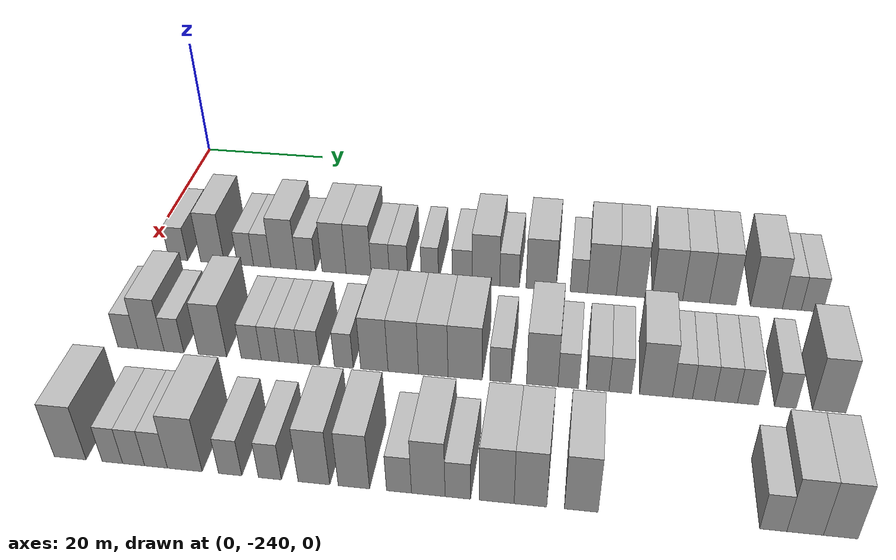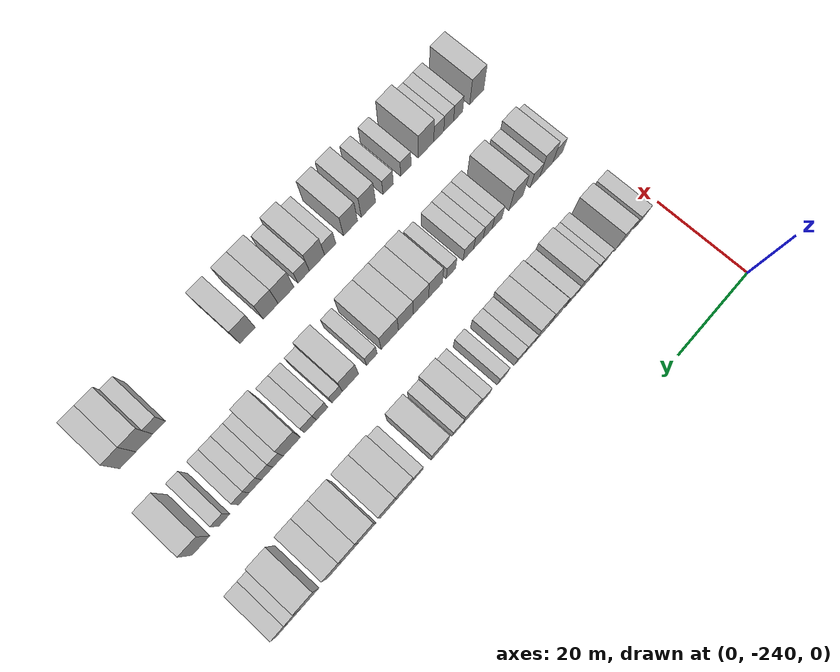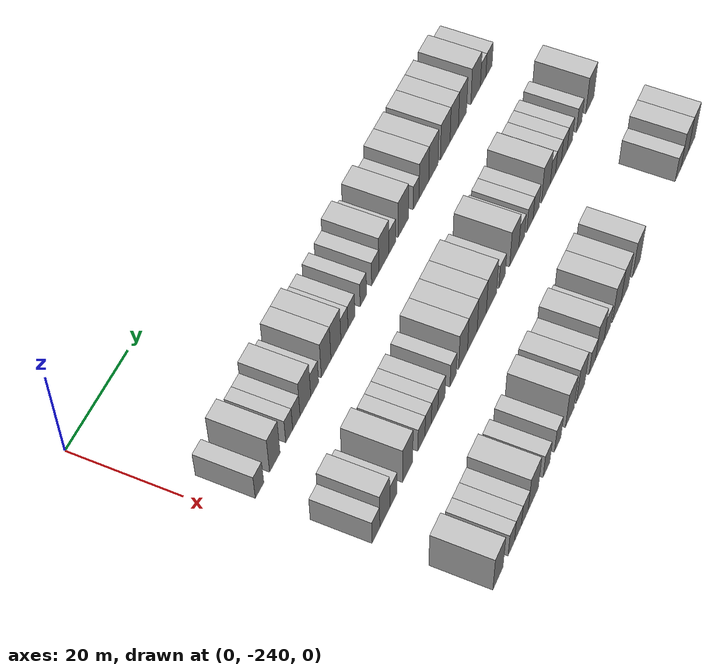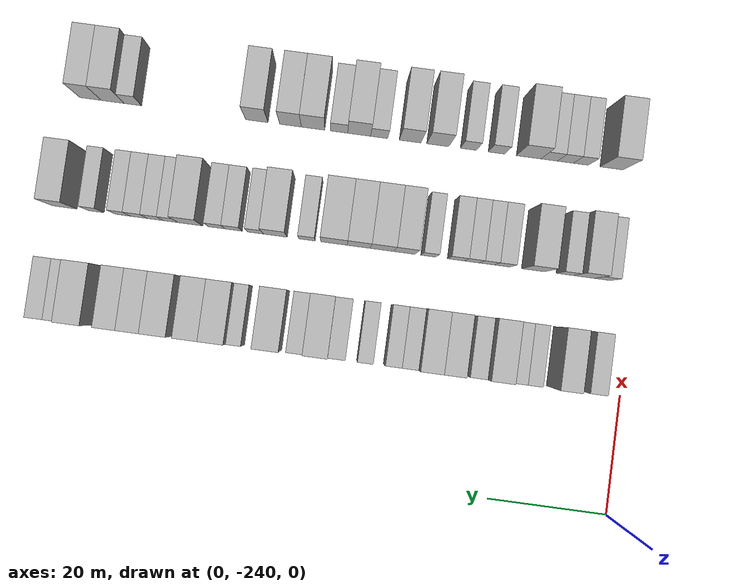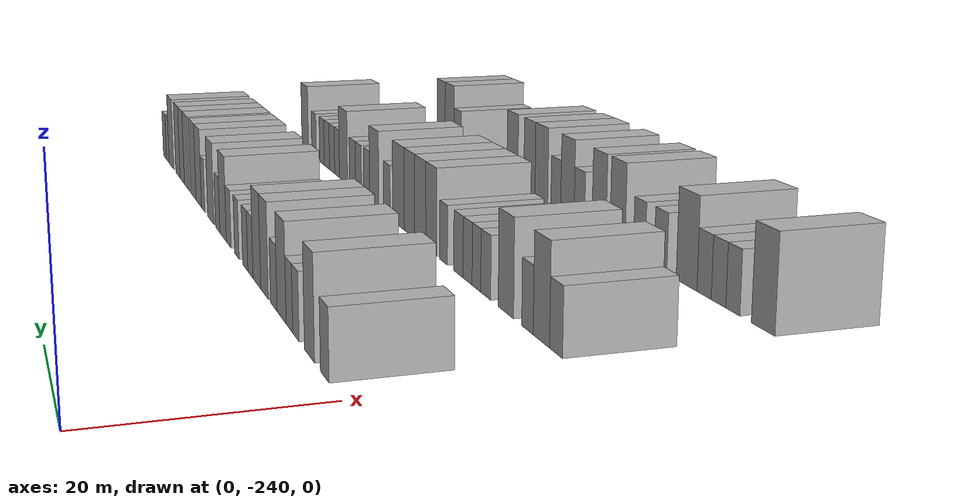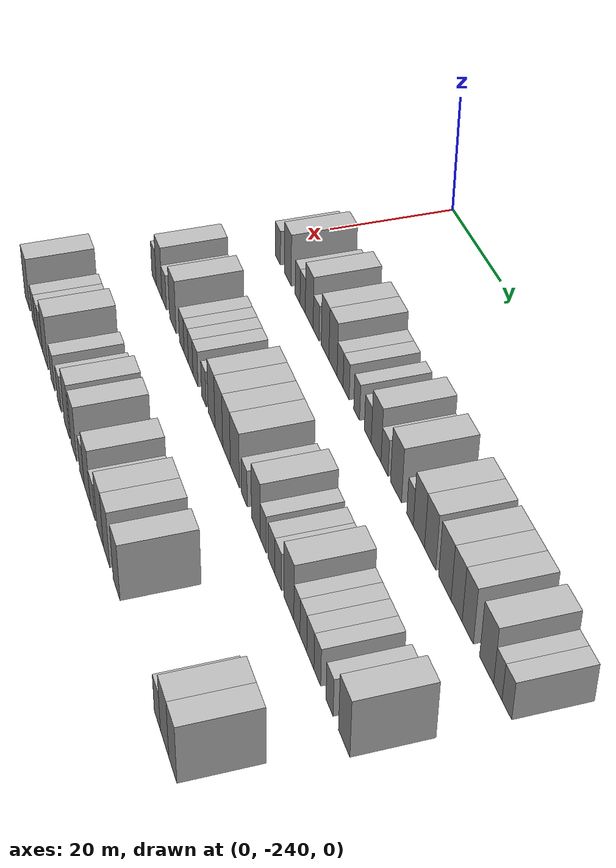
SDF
<sdf version="1.6">
 <world name="default">
  <model name="building_1">
   <static>1</static>
   <pose>25.0000 -234.5584 0 0.000000 0.000000 0.000000</pose>
   <link name="link">
    <pose>0 0 3.00 0 0 0</pose>
    <collision name="collision"><geometry><box><size>10.0000 2.8831 6.0000</size></box></geometry></collision>
    <visual name="visual">
     <cast_shadows>0</cast_shadows>
     <geometry><box><size>10.0000 2.8831 6.0000</size></box></geometry>
     <material>
      <script>
       <uri>model://HANNAS_wall/materials/scripts</uri>
       <uri>model://HANNAS_wall/materials/textures</uri>
       <name>vrc/HANNAS_wall</name>
      </script>
     </material>
    </visual>
   </link>
  </model>
  <model name="building_2">
   <static>1</static>
   <pose>25.0000 -229.2970 0 0.000000 0.000000 0.000000</pose>
   <link name="link">
    <pose>0 0 4.50 0 0 0</pose>
    <collision name="collision"><geometry><box><size>10.0000 3.6397 9.0000</size></box></geometry></collision>
    <visual name="visual">
     <cast_shadows>0</cast_shadows>
     <geometry><box><size>10.0000 3.6397 9.0000</size></box></geometry>
     <material>
      <script>
       <uri>model://HANNAS_wall/materials/scripts</uri>
       <uri>model://HANNAS_wall/materials/textures</uri>
       <name>vrc/HANNAS_wall</name>
      </script>
     </material>
    </visual>
   </link>
  </model>
  <model name="building_3">
   <static>1</static>
   <pose>25.0000 -224.2411 0 0.000000 0.000000 0.000000</pose>
   <link name="link">
    <pose>0 0 3.00 0 0 0</pose>
    <collision name="collision"><geometry><box><size>10.0000 2.4721 6.0000</size></box></geometry></collision>
    <visual name="visual">
     <cast_shadows>0</cast_shadows>
     <geometry><box><size>10.0000 2.4721 6.0000</size></box></geometry>
     <material>
      <script>
       <uri>model://HANNAS_wall/materials/scripts</uri>
       <uri>model://HANNAS_wall/materials/textures</uri>
       <name>vrc/HANNAS_wall</name>
      </script>
     </material>
    </visual>
   </link>
  </model>
  <model name="building_4">
   <static>1</static>
   <pose>25.0000 -221.6867 0 0.000000 0.000000 0.000000</pose>
   <link name="link">
    <pose>0 0 3.00 0 0 0</pose>
    <collision name="collision"><geometry><box><size>10.0000 2.6366 6.0000</size></box></geometry></collision>
    <visual name="visual">
     <cast_shadows>0</cast_shadows>
     <geometry><box><size>10.0000 2.6366 6.0000</size></box></geometry>
     <material>
      <script>
       <uri>model://HANNAS_wall/materials/scripts</uri>
       <uri>model://HANNAS_wall/materials/textures</uri>
       <name>vrc/HANNAS_wall</name>
      </script>
     </material>
    </visual>
   </link>
  </model>
  <model name="building_5">
   <static>1</static>
   <pose>25.0000 -218.4335 0 0.000000 0.000000 0.000000</pose>
   <link name="link">
    <pose>0 0 4.50 0 0 0</pose>
    <collision name="collision"><geometry><box><size>10.0000 3.8698 9.0000</size></box></geometry></collision>
    <visual name="visual">
     <cast_shadows>0</cast_shadows>
     <geometry><box><size>10.0000 3.8698 9.0000</size></box></geometry>
     <material>
      <script>
       <uri>model://HANNAS_wall/materials/scripts</uri>
       <uri>model://HANNAS_wall/materials/textures</uri>
       <name>vrc/HANNAS_wall</name>
      </script>
     </material>
    </visual>
   </link>
  </model>
  <model name="building_6">
   <static>1</static>
   <pose>25.0000 -215.0656 0 0.000000 0.000000 0.000000</pose>
   <link name="link">
    <pose>0 0 3.00 0 0 0</pose>
    <collision name="collision"><geometry><box><size>10.0000 2.8660 6.0000</size></box></geometry></collision>
    <visual name="visual">
     <cast_shadows>0</cast_shadows>
     <geometry><box><size>10.0000 2.8660 6.0000</size></box></geometry>
     <material>
      <script>
       <uri>model://HANNAS_wall/materials/scripts</uri>
       <uri>model://HANNAS_wall/materials/textures</uri>
       <name>vrc/HANNAS_wall</name>
      </script>
     </material>
    </visual>
   </link>
  </model>
  <model name="building_7">
   <static>1</static>
   <pose>25.0000 -210.8311 0 0.000000 0.000000 0.000000</pose>
   <link name="link">
    <pose>0 0 4.50 0 0 0</pose>
    <collision name="collision"><geometry><box><size>10.0000 3.6029 9.0000</size></box></geometry></collision>
    <visual name="visual">
     <cast_shadows>0</cast_shadows>
     <geometry><box><size>10.0000 3.6029 9.0000</size></box></geometry>
     <material>
      <script>
       <uri>model://HANNAS_wall/materials/scripts</uri>
       <uri>model://HANNAS_wall/materials/textures</uri>
       <name>vrc/HANNAS_wall</name>
      </script>
     </material>
    </visual>
   </link>
  </model>
  <model name="building_8">
   <static>1</static>
   <pose>25.0000 -207.1484 0 0.000000 0.000000 0.000000</pose>
   <link name="link">
    <pose>0 0 4.50 0 0 0</pose>
    <collision name="collision"><geometry><box><size>10.0000 3.7626 9.0000</size></box></geometry></collision>
    <visual name="visual">
     <cast_shadows>0</cast_shadows>
     <geometry><box><size>10.0000 3.7626 9.0000</size></box></geometry>
     <material>
      <script>
       <uri>model://HANNAS_wall/materials/scripts</uri>
       <uri>model://HANNAS_wall/materials/textures</uri>
       <name>vrc/HANNAS_wall</name>
      </script>
     </material>
    </visual>
   </link>
  </model>
  <model name="building_9">
   <static>1</static>
   <pose>25.0000 -203.9193 0 0.000000 0.000000 0.000000</pose>
   <link name="link">
    <pose>0 0 3.00 0 0 0</pose>
    <collision name="collision"><geometry><box><size>10.0000 2.6956 6.0000</size></box></geometry></collision>
    <visual name="visual">
     <cast_shadows>0</cast_shadows>
     <geometry><box><size>10.0000 2.6956 6.0000</size></box></geometry>
     <material>
      <script>
       <uri>model://HANNAS_wall/materials/scripts</uri>
       <uri>model://HANNAS_wall/materials/textures</uri>
       <name>vrc/HANNAS_wall</name>
      </script>
     </material>
    </visual>
   </link>
  </model>
  <model name="building_10">
   <static>1</static>
   <pose>25.0000 -201.2164 0 0.000000 0.000000 0.000000</pose>
   <link name="link">
    <pose>0 0 3.00 0 0 0</pose>
    <collision name="collision"><geometry><box><size>10.0000 2.7101 6.0000</size></box></geometry></collision>
    <visual name="visual">
     <cast_shadows>0</cast_shadows>
     <geometry><box><size>10.0000 2.7101 6.0000</size></box></geometry>
     <material>
      <script>
       <uri>model://HANNAS_wall/materials/scripts</uri>
       <uri>model://HANNAS_wall/materials/textures</uri>
       <name>vrc/HANNAS_wall</name>
      </script>
     </material>
    </visual>
   </link>
  </model>
  <model name="building_11">
   <static>1</static>
   <pose>25.0000 -196.5911 0 0.000000 0.000000 0.000000</pose>
   <link name="link">
    <pose>0 0 3.00 0 0 0</pose>
    <collision name="collision"><geometry><box><size>10.0000 2.5407 6.0000</size></box></geometry></collision>
    <visual name="visual">
     <cast_shadows>0</cast_shadows>
     <geometry><box><size>10.0000 2.5407 6.0000</size></box></geometry>
     <material>
      <script>
       <uri>model://HANNAS_wall/materials/scripts</uri>
       <uri>model://HANNAS_wall/materials/textures</uri>
       <name>vrc/HANNAS_wall</name>
      </script>
     </material>
    </visual>
   </link>
  </model>
  <model name="building_12">
   <static>1</static>
   <pose>25.0000 -191.8793 0 0.000000 0.000000 0.000000</pose>
   <link name="link">
    <pose>0 0 3.00 0 0 0</pose>
    <collision name="collision"><geometry><box><size>10.0000 2.8828 6.0000</size></box></geometry></collision>
    <visual name="visual">
     <cast_shadows>0</cast_shadows>
     <geometry><box><size>10.0000 2.8828 6.0000</size></box></geometry>
     <material>
      <script>
       <uri>model://HANNAS_wall/materials/scripts</uri>
       <uri>model://HANNAS_wall/materials/textures</uri>
       <name>vrc/HANNAS_wall</name>
      </script>
     </material>
    </visual>
   </link>
  </model>
  <model name="building_13">
   <static>1</static>
   <pose>25.0000 -188.4168 0 0.000000 0.000000 0.000000</pose>
   <link name="link">
    <pose>0 0 4.50 0 0 0</pose>
    <collision name="collision"><geometry><box><size>10.0000 4.0422 9.0000</size></box></geometry></collision>
    <visual name="visual">
     <cast_shadows>0</cast_shadows>
     <geometry><box><size>10.0000 4.0422 9.0000</size></box></geometry>
     <material>
      <script>
       <uri>model://HANNAS_wall/materials/scripts</uri>
       <uri>model://HANNAS_wall/materials/textures</uri>
       <name>vrc/HANNAS_wall</name>
      </script>
     </material>
    </visual>
   </link>
  </model>
  <model name="building_14">
   <static>1</static>
   <pose>25.0000 -184.9974 0 0.000000 0.000000 0.000000</pose>
   <link name="link">
    <pose>0 0 3.00 0 0 0</pose>
    <collision name="collision"><geometry><box><size>10.0000 2.7965 6.0000</size></box></geometry></collision>
    <visual name="visual">
     <cast_shadows>0</cast_shadows>
     <geometry><box><size>10.0000 2.7965 6.0000</size></box></geometry>
     <material>
      <script>
       <uri>model://HANNAS_wall/materials/scripts</uri>
       <uri>model://HANNAS_wall/materials/textures</uri>
       <name>vrc/HANNAS_wall</name>
      </script>
     </material>
    </visual>
   </link>
  </model>
  <model name="building_15">
   <static>1</static>
   <pose>25.0000 -180.4366 0 0.000000 0.000000 0.000000</pose>
   <link name="link">
    <pose>0 0 4.50 0 0 0</pose>
    <collision name="collision"><geometry><box><size>10.0000 4.3251 9.0000</size></box></geometry></collision>
    <visual name="visual">
     <cast_shadows>0</cast_shadows>
     <geometry><box><size>10.0000 4.3251 9.0000</size></box></geometry>
     <material>
      <script>
       <uri>model://HANNAS_wall/materials/scripts</uri>
       <uri>model://HANNAS_wall/materials/textures</uri>
       <name>vrc/HANNAS_wall</name>
      </script>
     </material>
    </visual>
   </link>
  </model>
  <model name="building_16">
   <static>1</static>
   <pose>25.0000 -175.0492 0 0.000000 0.000000 0.000000</pose>
   <link name="link">
    <pose>0 0 3.00 0 0 0</pose>
    <collision name="collision"><geometry><box><size>10.0000 2.4496 6.0000</size></box></geometry></collision>
    <visual name="visual">
     <cast_shadows>0</cast_shadows>
     <geometry><box><size>10.0000 2.4496 6.0000</size></box></geometry>
     <material>
      <script>
       <uri>model://HANNAS_wall/materials/scripts</uri>
       <uri>model://HANNAS_wall/materials/textures</uri>
       <name>vrc/HANNAS_wall</name>
      </script>
     </material>
    </visual>
   </link>
  </model>
  <model name="building_17">
   <static>1</static>
   <pose>25.0000 -171.7545 0 0.000000 0.000000 0.000000</pose>
   <link name="link">
    <pose>0 0 4.50 0 0 0</pose>
    <collision name="collision"><geometry><box><size>10.0000 4.1397 9.0000</size></box></geometry></collision>
    <visual name="visual">
     <cast_shadows>0</cast_shadows>
     <geometry><box><size>10.0000 4.1397 9.0000</size></box></geometry>
     <material>
      <script>
       <uri>model://HANNAS_wall/materials/scripts</uri>
       <uri>model://HANNAS_wall/materials/textures</uri>
       <name>vrc/HANNAS_wall</name>
      </script>
     </material>
    </visual>
   </link>
  </model>
  <model name="building_18">
   <static>1</static>
   <pose>25.0000 -167.6601 0 0.000000 0.000000 0.000000</pose>
   <link name="link">
    <pose>0 0 4.50 0 0 0</pose>
    <collision name="collision"><geometry><box><size>10.0000 4.0493 9.0000</size></box></geometry></collision>
    <visual name="visual">
     <cast_shadows>0</cast_shadows>
     <geometry><box><size>10.0000 4.0493 9.0000</size></box></geometry>
     <material>
      <script>
       <uri>model://HANNAS_wall/materials/scripts</uri>
       <uri>model://HANNAS_wall/materials/textures</uri>
       <name>vrc/HANNAS_wall</name>
      </script>
     </material>
    </visual>
   </link>
  </model>
  <model name="building_19">
   <static>1</static>
   <pose>25.0000 -162.4905 0 0.000000 0.000000 0.000000</pose>
   <link name="link">
    <pose>0 0 4.50 0 0 0</pose>
    <collision name="collision"><geometry><box><size>10.0000 4.2898 9.0000</size></box></geometry></collision>
    <visual name="visual">
     <cast_shadows>0</cast_shadows>
     <geometry><box><size>10.0000 4.2898 9.0000</size></box></geometry>
     <material>
      <script>
       <uri>model://HANNAS_wall/materials/scripts</uri>
       <uri>model://HANNAS_wall/materials/textures</uri>
       <name>vrc/HANNAS_wall</name>
      </script>
     </material>
    </visual>
   </link>
  </model>
  <model name="building_20">
   <static>1</static>
   <pose>25.0000 -158.4677 0 0.000000 0.000000 0.000000</pose>
   <link name="link">
    <pose>0 0 4.50 0 0 0</pose>
    <collision name="collision"><geometry><box><size>10.0000 3.7558 9.0000</size></box></geometry></collision>
    <visual name="visual">
     <cast_shadows>0</cast_shadows>
     <geometry><box><size>10.0000 3.7558 9.0000</size></box></geometry>
     <material>
      <script>
       <uri>model://HANNAS_wall/materials/scripts</uri>
       <uri>model://HANNAS_wall/materials/textures</uri>
       <name>vrc/HANNAS_wall</name>
      </script>
     </material>
    </visual>
   </link>
  </model>
  <model name="building_21">
   <static>1</static>
   <pose>25.0000 -154.7464 0 0.000000 0.000000 0.000000</pose>
   <link name="link">
    <pose>0 0 4.50 0 0 0</pose>
    <collision name="collision"><geometry><box><size>10.0000 3.6868 9.0000</size></box></geometry></collision>
    <visual name="visual">
     <cast_shadows>0</cast_shadows>
     <geometry><box><size>10.0000 3.6868 9.0000</size></box></geometry>
     <material>
      <script>
       <uri>model://HANNAS_wall/materials/scripts</uri>
       <uri>model://HANNAS_wall/materials/textures</uri>
       <name>vrc/HANNAS_wall</name>
      </script>
     </material>
    </visual>
   </link>
  </model>
  <model name="building_22">
   <static>1</static>
   <pose>25.0000 -148.6998 0 0.000000 0.000000 0.000000</pose>
   <link name="link">
    <pose>0 0 4.50 0 0 0</pose>
    <collision name="collision"><geometry><box><size>10.0000 4.4063 9.0000</size></box></geometry></collision>
    <visual name="visual">
     <cast_shadows>0</cast_shadows>
     <geometry><box><size>10.0000 4.4063 9.0000</size></box></geometry>
     <material>
      <script>
       <uri>model://HANNAS_wall/materials/scripts</uri>
       <uri>model://HANNAS_wall/materials/textures</uri>
       <name>vrc/HANNAS_wall</name>
      </script>
     </material>
    </visual>
   </link>
  </model>
  <model name="building_23">
   <static>1</static>
   <pose>25.0000 -145.2001 0 0.000000 0.000000 0.000000</pose>
   <link name="link">
    <pose>0 0 3.00 0 0 0</pose>
    <collision name="collision"><geometry><box><size>10.0000 2.5932 6.0000</size></box></geometry></collision>
    <visual name="visual">
     <cast_shadows>0</cast_shadows>
     <geometry><box><size>10.0000 2.5932 6.0000</size></box></geometry>
     <material>
      <script>
       <uri>model://HANNAS_wall/materials/scripts</uri>
       <uri>model://HANNAS_wall/materials/textures</uri>
       <name>vrc/HANNAS_wall</name>
      </script>
     </material>
    </visual>
   </link>
  </model>
  <model name="building_24">
   <static>1</static>
   <pose>25.0000 -142.4261 0 0.000000 0.000000 0.000000</pose>
   <link name="link">
    <pose>0 0 3.00 0 0 0</pose>
    <collision name="collision"><geometry><box><size>10.0000 2.9548 6.0000</size></box></geometry></collision>
    <visual name="visual">
     <cast_shadows>0</cast_shadows>
     <geometry><box><size>10.0000 2.9548 6.0000</size></box></geometry>
     <material>
      <script>
       <uri>model://HANNAS_wall/materials/scripts</uri>
       <uri>model://HANNAS_wall/materials/textures</uri>
       <name>vrc/HANNAS_wall</name>
      </script>
     </material>
    </visual>
   </link>
  </model>
  <model name="building_113">
   <static>1</static>
   <pose>44.0000 -234.6065 0 0.000000 0.000000 0.000000</pose>
   <link name="link">
    <pose>0 0 3.00 0 0 0</pose>
    <collision name="collision"><geometry><box><size>10.0000 2.7869 6.0000</size></box></geometry></collision>
    <visual name="visual">
     <cast_shadows>0</cast_shadows>
     <geometry><box><size>10.0000 2.7869 6.0000</size></box></geometry>
     <material>
      <script>
       <uri>model://HANNAS_wall/materials/scripts</uri>
       <uri>model://HANNAS_wall/materials/textures</uri>
       <name>vrc/HANNAS_wall</name>
      </script>
     </material>
    </visual>
   </link>
  </model>
  <model name="building_114">
   <static>1</static>
   <pose>44.0000 -231.3726 0 0.000000 0.000000 0.000000</pose>
   <link name="link">
    <pose>0 0 4.50 0 0 0</pose>
    <collision name="collision"><geometry><box><size>10.0000 3.6808 9.0000</size></box></geometry></collision>
    <visual name="visual">
     <cast_shadows>0</cast_shadows>
     <geometry><box><size>10.0000 3.6808 9.0000</size></box></geometry>
     <material>
      <script>
       <uri>model://HANNAS_wall/materials/scripts</uri>
       <uri>model://HANNAS_wall/materials/textures</uri>
       <name>vrc/HANNAS_wall</name>
      </script>
     </material>
    </visual>
   </link>
  </model>
  <model name="building_115">
   <static>1</static>
   <pose>44.0000 -228.1713 0 0.000000 0.000000 0.000000</pose>
   <link name="link">
    <pose>0 0 3.00 0 0 0</pose>
    <collision name="collision"><geometry><box><size>10.0000 2.7218 6.0000</size></box></geometry></collision>
    <visual name="visual">
     <cast_shadows>0</cast_shadows>
     <geometry><box><size>10.0000 2.7218 6.0000</size></box></geometry>
     <material>
      <script>
       <uri>model://HANNAS_wall/materials/scripts</uri>
       <uri>model://HANNAS_wall/materials/textures</uri>
       <name>vrc/HANNAS_wall</name>
      </script>
     </material>
    </visual>
   </link>
  </model>
  <model name="building_116">
   <static>1</static>
   <pose>44.0000 -222.8609 0 0.000000 0.000000 0.000000</pose>
   <link name="link">
    <pose>0 0 4.50 0 0 0</pose>
    <collision name="collision"><geometry><box><size>10.0000 3.8990 9.0000</size></box></geometry></collision>
    <visual name="visual">
     <cast_shadows>0</cast_shadows>
     <geometry><box><size>10.0000 3.8990 9.0000</size></box></geometry>
     <material>
      <script>
       <uri>model://HANNAS_wall/materials/scripts</uri>
       <uri>model://HANNAS_wall/materials/textures</uri>
       <name>vrc/HANNAS_wall</name>
      </script>
     </material>
    </visual>
   </link>
  </model>
  <model name="building_117">
   <static>1</static>
   <pose>44.0000 -217.5415 0 0.000000 0.000000 0.000000</pose>
   <link name="link">
    <pose>0 0 3.00 0 0 0</pose>
    <collision name="collision"><geometry><box><size>10.0000 2.7400 6.0000</size></box></geometry></collision>
    <visual name="visual">
     <cast_shadows>0</cast_shadows>
     <geometry><box><size>10.0000 2.7400 6.0000</size></box></geometry>
     <material>
      <script>
       <uri>model://HANNAS_wall/materials/scripts</uri>
       <uri>model://HANNAS_wall/materials/textures</uri>
       <name>vrc/HANNAS_wall</name>
      </script>
     </material>
    </visual>
   </link>
  </model>
  <model name="building_118">
   <static>1</static>
   <pose>44.0000 -214.9419 0 0.000000 0.000000 0.000000</pose>
   <link name="link">
    <pose>0 0 3.00 0 0 0</pose>
    <collision name="collision"><geometry><box><size>10.0000 2.4592 6.0000</size></box></geometry></collision>
    <visual name="visual">
     <cast_shadows>0</cast_shadows>
     <geometry><box><size>10.0000 2.4592 6.0000</size></box></geometry>
     <material>
      <script>
       <uri>model://HANNAS_wall/materials/scripts</uri>
       <uri>model://HANNAS_wall/materials/textures</uri>
       <name>vrc/HANNAS_wall</name>
      </script>
     </material>
    </visual>
   </link>
  </model>
  <model name="building_119">
   <static>1</static>
   <pose>44.0000 -212.4084 0 0.000000 0.000000 0.000000</pose>
   <link name="link">
    <pose>0 0 3.00 0 0 0</pose>
    <collision name="collision"><geometry><box><size>10.0000 2.6078 6.0000</size></box></geometry></collision>
    <visual name="visual">
     <cast_shadows>0</cast_shadows>
     <geometry><box><size>10.0000 2.6078 6.0000</size></box></geometry>
     <material>
      <script>
       <uri>model://HANNAS_wall/materials/scripts</uri>
       <uri>model://HANNAS_wall/materials/textures</uri>
       <name>vrc/HANNAS_wall</name>
      </script>
     </material>
    </visual>
   </link>
  </model>
  <model name="building_120">
   <static>1</static>
   <pose>44.0000 -209.6861 0 0.000000 0.000000 0.000000</pose>
   <link name="link">
    <pose>0 0 3.00 0 0 0</pose>
    <collision name="collision"><geometry><box><size>10.0000 2.8367 6.0000</size></box></geometry></collision>
    <visual name="visual">
     <cast_shadows>0</cast_shadows>
     <geometry><box><size>10.0000 2.8367 6.0000</size></box></geometry>
     <material>
      <script>
       <uri>model://HANNAS_wall/materials/scripts</uri>
       <uri>model://HANNAS_wall/materials/textures</uri>
       <name>vrc/HANNAS_wall</name>
      </script>
     </material>
    </visual>
   </link>
  </model>
  <model name="building_121">
   <static>1</static>
   <pose>44.0000 -205.0032 0 0.000000 0.000000 0.000000</pose>
   <link name="link">
    <pose>0 0 3.00 0 0 0</pose>
    <collision name="collision"><geometry><box><size>10.0000 2.5293 6.0000</size></box></geometry></collision>
    <visual name="visual">
     <cast_shadows>0</cast_shadows>
     <geometry><box><size>10.0000 2.5293 6.0000</size></box></geometry>
     <material>
      <script>
       <uri>model://HANNAS_wall/materials/scripts</uri>
       <uri>model://HANNAS_wall/materials/textures</uri>
       <name>vrc/HANNAS_wall</name>
      </script>
     </material>
    </visual>
   </link>
  </model>
  <model name="building_122">
   <static>1</static>
   <pose>44.0000 -200.9149 0 0.000000 0.000000 0.000000</pose>
   <link name="link">
    <pose>0 0 4.50 0 0 0</pose>
    <collision name="collision"><geometry><box><size>10.0000 3.6473 9.0000</size></box></geometry></collision>
    <visual name="visual">
     <cast_shadows>0</cast_shadows>
     <geometry><box><size>10.0000 3.6473 9.0000</size></box></geometry>
     <material>
      <script>
       <uri>model://HANNAS_wall/materials/scripts</uri>
       <uri>model://HANNAS_wall/materials/textures</uri>
       <name>vrc/HANNAS_wall</name>
      </script>
     </material>
    </visual>
   </link>
  </model>
  <model name="building_123">
   <static>1</static>
   <pose>44.0000 -197.0756 0 0.000000 0.000000 0.000000</pose>
   <link name="link">
    <pose>0 0 4.50 0 0 0</pose>
    <collision name="collision"><geometry><box><size>10.0000 4.0313 9.0000</size></box></geometry></collision>
    <visual name="visual">
     <cast_shadows>0</cast_shadows>
     <geometry><box><size>10.0000 4.0313 9.0000</size></box></geometry>
     <material>
      <script>
       <uri>model://HANNAS_wall/materials/scripts</uri>
       <uri>model://HANNAS_wall/materials/textures</uri>
       <name>vrc/HANNAS_wall</name>
      </script>
     </material>
    </visual>
   </link>
  </model>
  <model name="building_124">
   <static>1</static>
   <pose>44.0000 -193.1177 0 0.000000 0.000000 0.000000</pose>
   <link name="link">
    <pose>0 0 4.50 0 0 0</pose>
    <collision name="collision"><geometry><box><size>10.0000 3.8846 9.0000</size></box></geometry></collision>
    <visual name="visual">
     <cast_shadows>0</cast_shadows>
     <geometry><box><size>10.0000 3.8846 9.0000</size></box></geometry>
     <material>
      <script>
       <uri>model://HANNAS_wall/materials/scripts</uri>
       <uri>model://HANNAS_wall/materials/textures</uri>
       <name>vrc/HANNAS_wall</name>
      </script>
     </material>
    </visual>
   </link>
  </model>
  <model name="building_125">
   <static>1</static>
   <pose>44.0000 -188.9423 0 0.000000 0.000000 0.000000</pose>
   <link name="link">
    <pose>0 0 4.50 0 0 0</pose>
    <collision name="collision"><geometry><box><size>10.0000 4.4662 9.0000</size></box></geometry></collision>
    <visual name="visual">
     <cast_shadows>0</cast_shadows>
     <geometry><box><size>10.0000 4.4662 9.0000</size></box></geometry>
     <material>
      <script>
       <uri>model://HANNAS_wall/materials/scripts</uri>
       <uri>model://HANNAS_wall/materials/textures</uri>
       <name>vrc/HANNAS_wall</name>
      </script>
     </material>
    </visual>
   </link>
  </model>
  <model name="building_126">
   <static>1</static>
   <pose>44.0000 -184.3331 0 0.000000 0.000000 0.000000</pose>
   <link name="link">
    <pose>0 0 3.00 0 0 0</pose>
    <collision name="collision"><geometry><box><size>10.0000 2.7522 6.0000</size></box></geometry></collision>
    <visual name="visual">
     <cast_shadows>0</cast_shadows>
     <geometry><box><size>10.0000 2.7522 6.0000</size></box></geometry>
     <material>
      <script>
       <uri>model://HANNAS_wall/materials/scripts</uri>
       <uri>model://HANNAS_wall/materials/textures</uri>
       <name>vrc/HANNAS_wall</name>
      </script>
     </material>
    </visual>
   </link>
  </model>
  <model name="building_127">
   <static>1</static>
   <pose>44.0000 -178.9266 0 0.000000 0.000000 0.000000</pose>
   <link name="link">
    <pose>0 0 4.50 0 0 0</pose>
    <collision name="collision"><geometry><box><size>10.0000 4.0608 9.0000</size></box></geometry></collision>
    <visual name="visual">
     <cast_shadows>0</cast_shadows>
     <geometry><box><size>10.0000 4.0608 9.0000</size></box></geometry>
     <material>
      <script>
       <uri>model://HANNAS_wall/materials/scripts</uri>
       <uri>model://HANNAS_wall/materials/textures</uri>
       <name>vrc/HANNAS_wall</name>
      </script>
     </material>
    </visual>
   </link>
  </model>
  <model name="building_128">
   <static>1</static>
   <pose>44.0000 -175.5751 0 0.000000 0.000000 0.000000</pose>
   <link name="link">
    <pose>0 0 3.00 0 0 0</pose>
    <collision name="collision"><geometry><box><size>10.0000 2.6422 6.0000</size></box></geometry></collision>
    <visual name="visual">
     <cast_shadows>0</cast_shadows>
     <geometry><box><size>10.0000 2.6422 6.0000</size></box></geometry>
     <material>
      <script>
       <uri>model://HANNAS_wall/materials/scripts</uri>
       <uri>model://HANNAS_wall/materials/textures</uri>
       <name>vrc/HANNAS_wall</name>
      </script>
     </material>
    </visual>
   </link>
  </model>
  <model name="building_129">
   <static>1</static>
   <pose>44.0000 -171.8107 0 0.000000 0.000000 0.000000</pose>
   <link name="link">
    <pose>0 0 3.00 0 0 0</pose>
    <collision name="collision"><geometry><box><size>10.0000 2.8868 6.0000</size></box></geometry></collision>
    <visual name="visual">
     <cast_shadows>0</cast_shadows>
     <geometry><box><size>10.0000 2.8868 6.0000</size></box></geometry>
     <material>
      <script>
       <uri>model://HANNAS_wall/materials/scripts</uri>
       <uri>model://HANNAS_wall/materials/textures</uri>
       <name>vrc/HANNAS_wall</name>
      </script>
     </material>
    </visual>
   </link>
  </model>
  <model name="building_130">
   <static>1</static>
   <pose>44.0000 -168.9301 0 0.000000 0.000000 0.000000</pose>
   <link name="link">
    <pose>0 0 3.00 0 0 0</pose>
    <collision name="collision"><geometry><box><size>10.0000 2.8742 6.0000</size></box></geometry></collision>
    <visual name="visual">
     <cast_shadows>0</cast_shadows>
     <geometry><box><size>10.0000 2.8742 6.0000</size></box></geometry>
     <material>
      <script>
       <uri>model://HANNAS_wall/materials/scripts</uri>
       <uri>model://HANNAS_wall/materials/textures</uri>
       <name>vrc/HANNAS_wall</name>
      </script>
     </material>
    </visual>
   </link>
  </model>
  <model name="building_131">
   <static>1</static>
   <pose>44.0000 -164.4078 0 0.000000 0.000000 0.000000</pose>
   <link name="link">
    <pose>0 0 4.50 0 0 0</pose>
    <collision name="collision"><geometry><box><size>10.0000 4.1705 9.0000</size></box></geometry></collision>
    <visual name="visual">
     <cast_shadows>0</cast_shadows>
     <geometry><box><size>10.0000 4.1705 9.0000</size></box></geometry>
     <material>
      <script>
       <uri>model://HANNAS_wall/materials/scripts</uri>
       <uri>model://HANNAS_wall/materials/textures</uri>
       <name>vrc/HANNAS_wall</name>
      </script>
     </material>
    </visual>
   </link>
  </model>
  <model name="building_132">
   <static>1</static>
   <pose>44.0000 -161.0731 0 0.000000 0.000000 0.000000</pose>
   <link name="link">
    <pose>0 0 3.00 0 0 0</pose>
    <collision name="collision"><geometry><box><size>10.0000 2.4988 6.0000</size></box></geometry></collision>
    <visual name="visual">
     <cast_shadows>0</cast_shadows>
     <geometry><box><size>10.0000 2.4988 6.0000</size></box></geometry>
     <material>
      <script>
       <uri>model://HANNAS_wall/materials/scripts</uri>
       <uri>model://HANNAS_wall/materials/textures</uri>
       <name>vrc/HANNAS_wall</name>
      </script>
     </material>
    </visual>
   </link>
  </model>
  <model name="building_133">
   <static>1</static>
   <pose>44.0000 -158.4482 0 0.000000 0.000000 0.000000</pose>
   <link name="link">
    <pose>0 0 3.00 0 0 0</pose>
    <collision name="collision"><geometry><box><size>10.0000 2.7510 6.0000</size></box></geometry></collision>
    <visual name="visual">
     <cast_shadows>0</cast_shadows>
     <geometry><box><size>10.0000 2.7510 6.0000</size></box></geometry>
     <material>
      <script>
       <uri>model://HANNAS_wall/materials/scripts</uri>
       <uri>model://HANNAS_wall/materials/textures</uri>
       <name>vrc/HANNAS_wall</name>
      </script>
     </material>
    </visual>
   </link>
  </model>
  <model name="building_134">
   <static>1</static>
   <pose>44.0000 -155.6371 0 0.000000 0.000000 0.000000</pose>
   <link name="link">
    <pose>0 0 3.00 0 0 0</pose>
    <collision name="collision"><geometry><box><size>10.0000 2.8712 6.0000</size></box></geometry></collision>
    <visual name="visual">
     <cast_shadows>0</cast_shadows>
     <geometry><box><size>10.0000 2.8712 6.0000</size></box></geometry>
     <material>
      <script>
       <uri>model://HANNAS_wall/materials/scripts</uri>
       <uri>model://HANNAS_wall/materials/textures</uri>
       <name>vrc/HANNAS_wall</name>
      </script>
     </material>
    </visual>
   </link>
  </model>
  <model name="building_135">
   <static>1</static>
   <pose>44.0000 -152.9056 0 0.000000 0.000000 0.000000</pose>
   <link name="link">
    <pose>0 0 3.00 0 0 0</pose>
    <collision name="collision"><geometry><box><size>10.0000 2.5919 6.0000</size></box></geometry></collision>
    <visual name="visual">
     <cast_shadows>0</cast_shadows>
     <geometry><box><size>10.0000 2.5919 6.0000</size></box></geometry>
     <material>
      <script>
       <uri>model://HANNAS_wall/materials/scripts</uri>
       <uri>model://HANNAS_wall/materials/textures</uri>
       <name>vrc/HANNAS_wall</name>
      </script>
     </material>
    </visual>
   </link>
  </model>
  <model name="building_136">
   <static>1</static>
   <pose>44.0000 -148.2795 0 0.000000 0.000000 0.000000</pose>
   <link name="link">
    <pose>0 0 3.00 0 0 0</pose>
    <collision name="collision"><geometry><box><size>10.0000 2.6603 6.0000</size></box></geometry></collision>
    <visual name="visual">
     <cast_shadows>0</cast_shadows>
     <geometry><box><size>10.0000 2.6603 6.0000</size></box></geometry>
     <material>
      <script>
       <uri>model://HANNAS_wall/materials/scripts</uri>
       <uri>model://HANNAS_wall/materials/textures</uri>
       <name>vrc/HANNAS_wall</name>
      </script>
     </material>
    </visual>
   </link>
  </model>
  <model name="building_137">
   <static>1</static>
   <pose>44.0000 -142.9048 0 0.000000 0.000000 0.000000</pose>
   <link name="link">
    <pose>0 0 4.50 0 0 0</pose>
    <collision name="collision"><geometry><box><size>10.0000 4.0891 9.0000</size></box></geometry></collision>
    <visual name="visual">
     <cast_shadows>0</cast_shadows>
     <geometry><box><size>10.0000 4.0891 9.0000</size></box></geometry>
     <material>
      <script>
       <uri>model://HANNAS_wall/materials/scripts</uri>
       <uri>model://HANNAS_wall/materials/textures</uri>
       <name>vrc/HANNAS_wall</name>
      </script>
     </material>
    </visual>
   </link>
  </model>
  <model name="building_226">
   <static>1</static>
   <pose>63.0000 -234.0090 0 0.000000 0.000000 0.000000</pose>
   <link name="link">
    <pose>0 0 4.50 0 0 0</pose>
    <collision name="collision"><geometry><box><size>10.0000 3.9819 9.0000</size></box></geometry></collision>
    <visual name="visual">
     <cast_shadows>0</cast_shadows>
     <geometry><box><size>10.0000 3.9819 9.0000</size></box></geometry>
     <material>
      <script>
       <uri>model://HANNAS_wall/materials/scripts</uri>
       <uri>model://HANNAS_wall/materials/textures</uri>
       <name>vrc/HANNAS_wall</name>
      </script>
     </material>
    </visual>
   </link>
  </model>
  <model name="building_227">
   <static>1</static>
   <pose>63.0000 -228.7401 0 0.000000 0.000000 0.000000</pose>
   <link name="link">
    <pose>0 0 3.00 0 0 0</pose>
    <collision name="collision"><geometry><box><size>10.0000 2.5560 6.0000</size></box></geometry></collision>
    <visual name="visual">
     <cast_shadows>0</cast_shadows>
     <geometry><box><size>10.0000 2.5560 6.0000</size></box></geometry>
     <material>
      <script>
       <uri>model://HANNAS_wall/materials/scripts</uri>
       <uri>model://HANNAS_wall/materials/textures</uri>
       <name>vrc/HANNAS_wall</name>
      </script>
     </material>
    </visual>
   </link>
  </model>
  <model name="building_228">
   <static>1</static>
   <pose>63.0000 -226.0976 0 0.000000 0.000000 0.000000</pose>
   <link name="link">
    <pose>0 0 3.00 0 0 0</pose>
    <collision name="collision"><geometry><box><size>10.0000 2.7291 6.0000</size></box></geometry></collision>
    <visual name="visual">
     <cast_shadows>0</cast_shadows>
     <geometry><box><size>10.0000 2.7291 6.0000</size></box></geometry>
     <material>
      <script>
       <uri>model://HANNAS_wall/materials/scripts</uri>
       <uri>model://HANNAS_wall/materials/textures</uri>
       <name>vrc/HANNAS_wall</name>
      </script>
     </material>
    </visual>
   </link>
  </model>
  <model name="building_229">
   <static>1</static>
   <pose>63.0000 -223.3312 0 0.000000 0.000000 0.000000</pose>
   <link name="link">
    <pose>0 0 3.00 0 0 0</pose>
    <collision name="collision"><geometry><box><size>10.0000 2.8037 6.0000</size></box></geometry></collision>
    <visual name="visual">
     <cast_shadows>0</cast_shadows>
     <geometry><box><size>10.0000 2.8037 6.0000</size></box></geometry>
     <material>
      <script>
       <uri>model://HANNAS_wall/materials/scripts</uri>
       <uri>model://HANNAS_wall/materials/textures</uri>
       <name>vrc/HANNAS_wall</name>
      </script>
     </material>
    </visual>
   </link>
  </model>
  <model name="building_230">
   <static>1</static>
   <pose>63.0000 -219.8065 0 0.000000 0.000000 0.000000</pose>
   <link name="link">
    <pose>0 0 4.50 0 0 0</pose>
    <collision name="collision"><geometry><box><size>10.0000 4.2458 9.0000</size></box></geometry></collision>
    <visual name="visual">
     <cast_shadows>0</cast_shadows>
     <geometry><box><size>10.0000 4.2458 9.0000</size></box></geometry>
     <material>
      <script>
       <uri>model://HANNAS_wall/materials/scripts</uri>
       <uri>model://HANNAS_wall/materials/textures</uri>
       <name>vrc/HANNAS_wall</name>
      </script>
     </material>
    </visual>
   </link>
  </model>
  <model name="building_231">
   <static>1</static>
   <pose>63.0000 -214.2708 0 0.000000 0.000000 0.000000</pose>
   <link name="link">
    <pose>0 0 3.00 0 0 0</pose>
    <collision name="collision"><geometry><box><size>10.0000 2.8255 6.0000</size></box></geometry></collision>
    <visual name="visual">
     <cast_shadows>0</cast_shadows>
     <geometry><box><size>10.0000 2.8255 6.0000</size></box></geometry>
     <material>
      <script>
       <uri>model://HANNAS_wall/materials/scripts</uri>
       <uri>model://HANNAS_wall/materials/textures</uri>
       <name>vrc/HANNAS_wall</name>
      </script>
     </material>
    </visual>
   </link>
  </model>
  <model name="building_232">
   <static>1</static>
   <pose>63.0000 -209.4725 0 0.000000 0.000000 0.000000</pose>
   <link name="link">
    <pose>0 0 3.00 0 0 0</pose>
    <collision name="collision"><geometry><box><size>10.0000 2.7712 6.0000</size></box></geometry></collision>
    <visual name="visual">
     <cast_shadows>0</cast_shadows>
     <geometry><box><size>10.0000 2.7712 6.0000</size></box></geometry>
     <material>
      <script>
       <uri>model://HANNAS_wall/materials/scripts</uri>
       <uri>model://HANNAS_wall/materials/textures</uri>
       <name>vrc/HANNAS_wall</name>
      </script>
     </material>
    </visual>
   </link>
  </model>
  <model name="building_233">
   <static>1</static>
   <pose>63.0000 -204.1919 0 0.000000 0.000000 0.000000</pose>
   <link name="link">
    <pose>0 0 4.50 0 0 0</pose>
    <collision name="collision"><geometry><box><size>10.0000 3.7900 9.0000</size></box></geometry></collision>
    <visual name="visual">
     <cast_shadows>0</cast_shadows>
     <geometry><box><size>10.0000 3.7900 9.0000</size></box></geometry>
     <material>
      <script>
       <uri>model://HANNAS_wall/materials/scripts</uri>
       <uri>model://HANNAS_wall/materials/textures</uri>
       <name>vrc/HANNAS_wall</name>
      </script>
     </material>
    </visual>
   </link>
  </model>
  <model name="building_234">
   <static>1</static>
   <pose>63.0000 -199.4433 0 0.000000 0.000000 0.000000</pose>
   <link name="link">
    <pose>0 0 4.50 0 0 0</pose>
    <collision name="collision"><geometry><box><size>10.0000 3.7073 9.0000</size></box></geometry></collision>
    <visual name="visual">
     <cast_shadows>0</cast_shadows>
     <geometry><box><size>10.0000 3.7073 9.0000</size></box></geometry>
     <material>
      <script>
       <uri>model://HANNAS_wall/materials/scripts</uri>
       <uri>model://HANNAS_wall/materials/textures</uri>
       <name>vrc/HANNAS_wall</name>
      </script>
     </material>
    </visual>
   </link>
  </model>
  <model name="building_235">
   <static>1</static>
   <pose>63.0000 -194.1254 0 0.000000 0.000000 0.000000</pose>
   <link name="link">
    <pose>0 0 3.00 0 0 0</pose>
    <collision name="collision"><geometry><box><size>10.0000 2.9284 6.0000</size></box></geometry></collision>
    <visual name="visual">
     <cast_shadows>0</cast_shadows>
     <geometry><box><size>10.0000 2.9284 6.0000</size></box></geometry>
     <material>
      <script>
       <uri>model://HANNAS_wall/materials/scripts</uri>
       <uri>model://HANNAS_wall/materials/textures</uri>
       <name>vrc/HANNAS_wall</name>
      </script>
     </material>
    </visual>
   </link>
  </model>
  <model name="building_236">
   <static>1</static>
   <pose>63.0000 -190.7014 0 0.000000 0.000000 0.000000</pose>
   <link name="link">
    <pose>0 0 4.50 0 0 0</pose>
    <collision name="collision"><geometry><box><size>10.0000 3.9196 9.0000</size></box></geometry></collision>
    <visual name="visual">
     <cast_shadows>0</cast_shadows>
     <geometry><box><size>10.0000 3.9196 9.0000</size></box></geometry>
     <material>
      <script>
       <uri>model://HANNAS_wall/materials/scripts</uri>
       <uri>model://HANNAS_wall/materials/textures</uri>
       <name>vrc/HANNAS_wall</name>
      </script>
     </material>
    </visual>
   </link>
  </model>
  <model name="building_237">
   <static>1</static>
   <pose>63.0000 -187.2646 0 0.000000 0.000000 0.000000</pose>
   <link name="link">
    <pose>0 0 3.00 0 0 0</pose>
    <collision name="collision"><geometry><box><size>10.0000 2.9539 6.0000</size></box></geometry></collision>
    <visual name="visual">
     <cast_shadows>0</cast_shadows>
     <geometry><box><size>10.0000 2.9539 6.0000</size></box></geometry>
     <material>
      <script>
       <uri>model://HANNAS_wall/materials/scripts</uri>
       <uri>model://HANNAS_wall/materials/textures</uri>
       <name>vrc/HANNAS_wall</name>
      </script>
     </material>
    </visual>
   </link>
  </model>
  <model name="building_238">
   <static>1</static>
   <pose>63.0000 -182.7807 0 0.000000 0.000000 0.000000</pose>
   <link name="link">
    <pose>0 0 4.50 0 0 0</pose>
    <collision name="collision"><geometry><box><size>10.0000 4.0139 9.0000</size></box></geometry></collision>
    <visual name="visual">
     <cast_shadows>0</cast_shadows>
     <geometry><box><size>10.0000 4.0139 9.0000</size></box></geometry>
     <material>
      <script>
       <uri>model://HANNAS_wall/materials/scripts</uri>
       <uri>model://HANNAS_wall/materials/textures</uri>
       <name>vrc/HANNAS_wall</name>
      </script>
     </material>
    </visual>
   </link>
  </model>
  <model name="building_239">
   <static>1</static>
   <pose>63.0000 -178.9105 0 0.000000 0.000000 0.000000</pose>
   <link name="link">
    <pose>0 0 4.50 0 0 0</pose>
    <collision name="collision"><geometry><box><size>10.0000 3.7264 9.0000</size></box></geometry></collision>
    <visual name="visual">
     <cast_shadows>0</cast_shadows>
     <geometry><box><size>10.0000 3.7264 9.0000</size></box></geometry>
     <material>
      <script>
       <uri>model://HANNAS_wall/materials/scripts</uri>
       <uri>model://HANNAS_wall/materials/textures</uri>
       <name>vrc/HANNAS_wall</name>
      </script>
     </material>
    </visual>
   </link>
  </model>
  <model name="building_240">
   <static>1</static>
   <pose>63.0000 -173.1321 0 0.000000 0.000000 0.000000</pose>
   <link name="link">
    <pose>0 0 4.50 0 0 0</pose>
    <collision name="collision"><geometry><box><size>10.0000 3.8305 9.0000</size></box></geometry></collision>
    <visual name="visual">
     <cast_shadows>0</cast_shadows>
     <geometry><box><size>10.0000 3.8305 9.0000</size></box></geometry>
     <material>
      <script>
       <uri>model://HANNAS_wall/materials/scripts</uri>
       <uri>model://HANNAS_wall/materials/textures</uri>
       <name>vrc/HANNAS_wall</name>
      </script>
     </material>
    </visual>
   </link>
  </model>
  <model name="building_241">
   <static>1</static>
   <pose>63.0000 -151.7857 0 0.000000 0.000000 0.000000</pose>
   <link name="link">
    <pose>0 0 3.00 0 0 0</pose>
    <collision name="collision"><geometry><box><size>10.0000 2.9541 6.0000</size></box></geometry></collision>
    <visual name="visual">
     <cast_shadows>0</cast_shadows>
     <geometry><box><size>10.0000 2.9541 6.0000</size></box></geometry>
     <material>
      <script>
       <uri>model://HANNAS_wall/materials/scripts</uri>
       <uri>model://HANNAS_wall/materials/textures</uri>
       <name>vrc/HANNAS_wall</name>
      </script>
     </material>
    </visual>
   </link>
  </model>
  <model name="building_242">
   <static>1</static>
   <pose>63.0000 -148.3213 0 0.000000 0.000000 0.000000</pose>
   <link name="link">
    <pose>0 0 4.50 0 0 0</pose>
    <collision name="collision"><geometry><box><size>10.0000 3.9748 9.0000</size></box></geometry></collision>
    <visual name="visual">
     <cast_shadows>0</cast_shadows>
     <geometry><box><size>10.0000 3.9748 9.0000</size></box></geometry>
     <material>
      <script>
       <uri>model://HANNAS_wall/materials/scripts</uri>
       <uri>model://HANNAS_wall/materials/textures</uri>
       <name>vrc/HANNAS_wall</name>
      </script>
     </material>
    </visual>
   </link>
  </model>
  <model name="building_243">
   <static>1</static>
   <pose>63.0000 -144.4727 0 0.000000 0.000000 0.000000</pose>
   <link name="link">
    <pose>0 0 4.50 0 0 0</pose>
    <collision name="collision"><geometry><box><size>10.0000 3.7224 9.0000</size></box></geometry></collision>
    <visual name="visual">
     <cast_shadows>0</cast_shadows>
     <geometry><box><size>10.0000 3.7224 9.0000</size></box></geometry>
     <material>
      <script>
       <uri>model://HANNAS_wall/materials/scripts</uri>
       <uri>model://HANNAS_wall/materials/textures</uri>
       <name>vrc/HANNAS_wall</name>
      </script>
     </material>
    </visual>
   </link>
  </model>
 </world>
</sdf>
